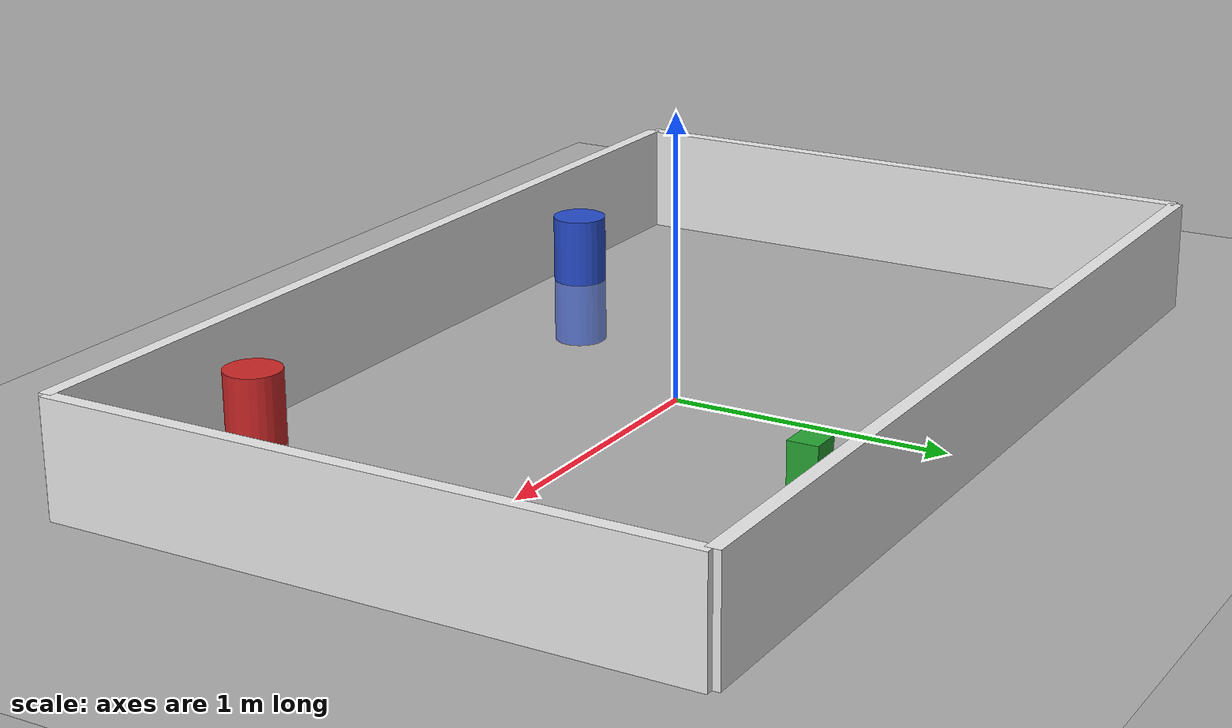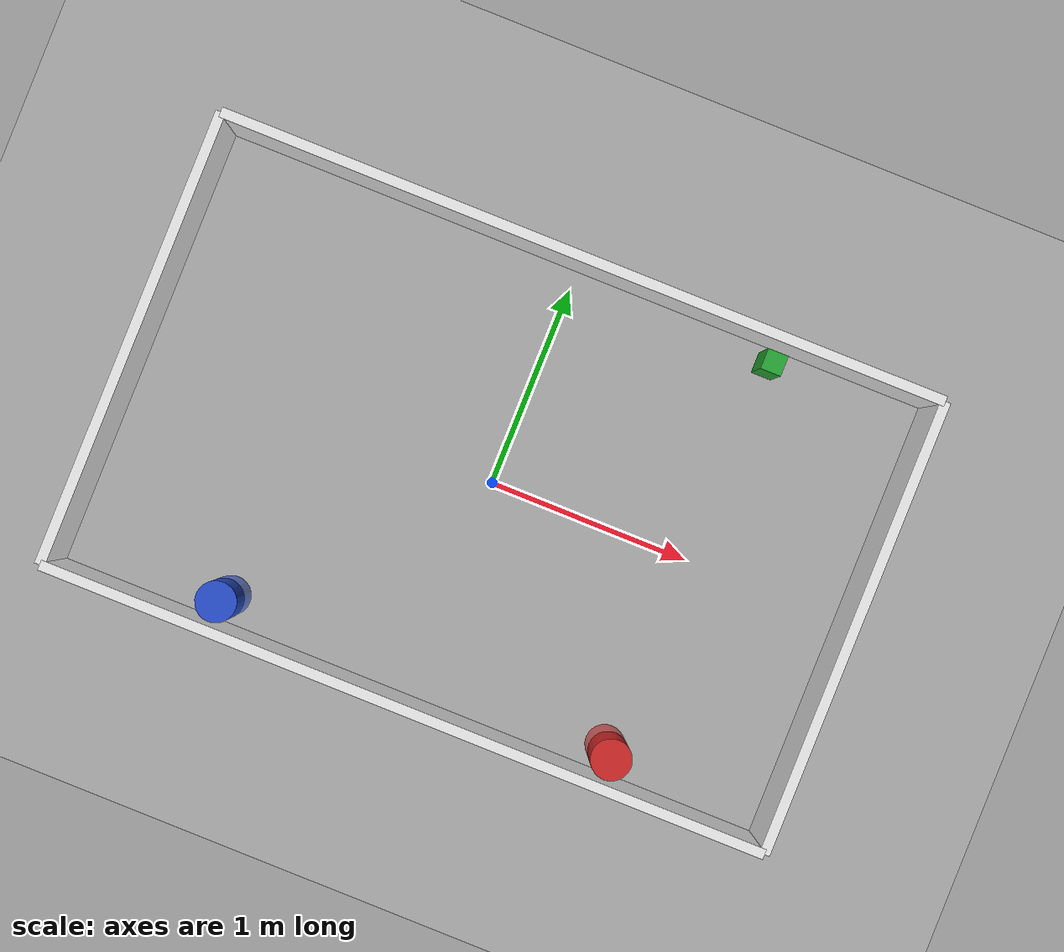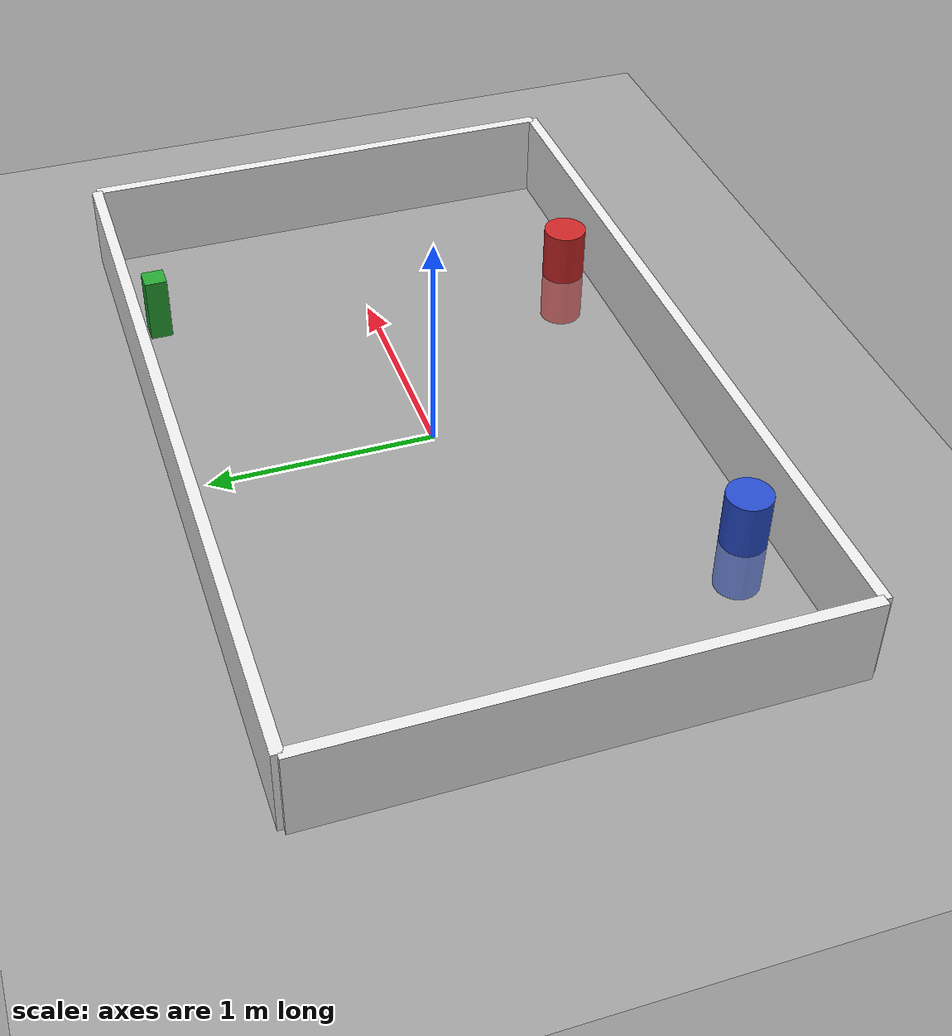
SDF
<sdf version="1.7">
 <world name="static_room">
  <light name="sun" type="directional">
   <pose>0 0 10 0 0 0</pose>
   <diffuse>0.8 0.8 0.8 1</diffuse>
   <specular>0.2 0.2 0.2 1</specular>
   <attenuation>
    <range>1000</range>
    <constant>0.9</constant>
    <linear>0.01</linear>
    <quadratic>0.001</quadratic>
   </attenuation>
   <direction>-0.5 0.1 -0.9</direction>
  </light>
  <model name="ground_plane">
   <static>true</static>
   <link name="link">
    <collision name="collision">
     <geometry><plane><normal>0 0 1</normal><size>3.6 2.25</size></plane></geometry>
     <surface><friction><ode><mu>100</mu><mu2>50</mu2></ode></friction></surface>
    </collision>
    <visual name="visual">
     <cast_shadows>false</cast_shadows>
     <geometry><plane><normal>0 0 1</normal><size>10 10</size></plane></geometry>
     <material>
      <script><uri>file://media/materials/scripts/gazebo.material</uri><name>Gazebo/Grey</name></script>
     </material>
    </visual>
   </link>
  </model>
  <model name="north_wall">
   <static>true</static>
   <pose>0 1.125 0.2 0 0 0</pose>
   <link name="link">
    <collision name="collision"><geometry><box><size>3.6 0.05 0.4</size></box></geometry></collision>
    <visual name="visual">
     <geometry><box><size>3.6 0.05 0.4</size></box></geometry>
     <material><script><name>Gazebo/White</name></script></material>
    </visual>
   </link>
  </model>
  <model name="south_wall">
   <static>true</static>
   <pose>0 -1.125 0.2 0 0 0</pose>
   <link name="link">
    <collision name="collision"><geometry><box><size>3.6 0.05 0.4</size></box></geometry></collision>
    <visual name="visual">
     <geometry><box><size>3.6 0.05 0.4</size></box></geometry>
     <material><script><name>Gazebo/White</name></script></material>
    </visual>
   </link>
  </model>
  <model name="east_wall">
   <static>true</static>
   <pose>1.8 0 0.2 0 0 1.57</pose>
   <link name="link">
    <collision name="collision"><geometry><box><size>2.25 0.05 0.4</size></box></geometry></collision>
    <visual name="visual">
     <geometry><box><size>2.25 0.05 0.4</size></box></geometry>
     <material><script><name>Gazebo/White</name></script></material>
    </visual>
   </link>
  </model>
  <model name="west_wall">
   <static>true</static>
   <pose>-1.8 0 0.2 0 0 1.57</pose>
   <link name="link">
    <collision name="collision"><geometry><box><size>2.25 0.05 0.4</size></box></geometry></collision>
    <visual name="visual">
     <geometry><box><size>2.25 0.05 0.4</size></box></geometry>
     <material><script><name>Gazebo/White</name></script></material>
    </visual>
   </link>
  </model>
  <model name="human1">
   <static>true</static>
   <pose>-1.0 -1.0 0 0 0 0</pose>
   <link name="link">
    <collision name="collision">
     <geometry><cylinder><radius>0.10</radius><length>0.50</length></cylinder></geometry>
    </collision>
    <visual name="visual">
     <geometry><cylinder><radius>0.10</radius><length>0.50</length></cylinder></geometry>
     <material><script><name>Gazebo/Blue</name></script></material>
    </visual>
   </link>
  </model>
  <model name="human2">
   <static>true</static>
   <pose>1.0 -1.0 0 0 0 0</pose>
   <link name="link">
    <collision name="collision">
     <geometry><cylinder><radius>0.10</radius><length>0.50</length></cylinder></geometry>
    </collision>
    <visual name="visual">
     <geometry><cylinder><radius>0.10</radius><length>0.50</length></cylinder></geometry>
     <material><script><name>Gazebo/Red</name></script></material>
    </visual>
   </link>
  </model>
  <model name="toy">
   <static>true</static>
   <pose>1.0 1.0 0.25 0 0 0</pose>
   <link name="link">
    <collision name="collision"><geometry><box><size>0.1 0.1 0.3</size></box></geometry></collision>
    <visual name="visual">
     <geometry><box><size>0.1 0.1 0.3</size></box></geometry>
     <material><script><name>Gazebo/Green</name></script></material>
    </visual>
   </link>
  </model>
  <plugin name="gazebo_ros_init" filename="libgazebo_ros_init.so"/>
  <plugin name="gazebo_ros_factory" filename="libgazebo_ros_factory.so"/>
 </world>
 <physics type="ode"><gravity>0 0 -9.8</gravity><real_time_update_rate>1000.0</real_time_update_rate></physics>
</sdf>
